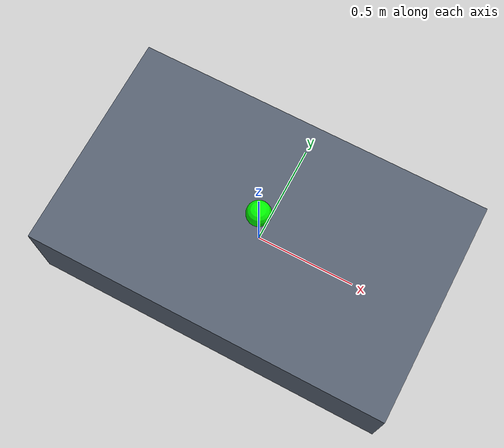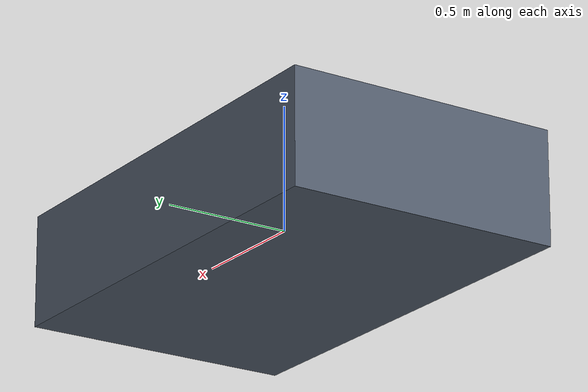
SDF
<?xml version="1.0"?>
<sdf version="1.10">
  <model name="crusader_omnix">

    <link name="base_link">
      <inertial>
        <mass>35.0</mass>
        <pose>0 0 -0.05 0 0 0</pose>
        <inertia>
          <ixx>3.12</ixx>
          <iyy>9.04</iyy>
          <izz>10.99</izz>
          <ixy>0</ixy><ixz>0</ixz><iyz>0</iyz>
        </inertia>
      </inertial>

      <collision name="hull_collision">
        <geometry><box><size>1.80 1.10 0.45</size></box></geometry>
      </collision>

      <visual name="hull_visual">
        <geometry><box><size>1.80 1.10 0.45</size></box></geometry>
        <material>
          <ambient>0.25 0.28 0.32 1</ambient>
          <diffuse>0.32 0.36 0.42 1</diffuse>
        </material>
      </visual>

      <visual name="mode_indicator">
        <pose>0 0 0.35 0 0 0</pose>
        <geometry><sphere><radius>0.06</radius></sphere></geometry>
        <material>
          <ambient>0 1 0 1</ambient>
          <diffuse>0 1 0 1</diffuse>
          <emissive>0 1 0 1</emissive>
        </material>
      </visual>

      <sensor name="imu_sensor" type="imu">
        <always_on>1</always_on>
        <update_rate>200</update_rate>
      </sensor>

      <sensor name="gps_sensor" type="navsat">
        <always_on>1</always_on>
        <update_rate>10</update_rate>
      </sensor>
    </link>

    <!-- ================== THRUSTERS ================== -->
    <!-- Positions/axes are the OmniX X-layout described above. -->

    <link name="thruster_fp">
      <pose>0.60 0.42 -0.10 0 0 0</pose>
      <inertial><mass>0.5</mass>
        <inertia><ixx>1e-4</ixx><iyy>1e-4</iyy><izz>1e-4</izz>
          <ixy>0</ixy><ixz>0</ixz><iyz>0</iyz></inertia></inertial>
      <visual name="prop"><geometry><cylinder><radius>0.06</radius>
        <length>0.04</length></cylinder></geometry></visual>
    </link>
    <joint name="thruster_fp_joint" type="revolute">
      <parent>base_link</parent><child>thruster_fp</child>
      <axis><xyz>0.707 0.707 0</xyz>
        <limit><lower>-1e16</lower><upper>1e16</upper></limit></axis>
    </joint>

    <link name="thruster_fs">
      <pose>0.60 -0.42 -0.10 0 0 0</pose>
      <inertial><mass>0.5</mass>
        <inertia><ixx>1e-4</ixx><iyy>1e-4</iyy><izz>1e-4</izz>
          <ixy>0</ixy><ixz>0</ixz><iyz>0</iyz></inertia></inertial>
      <visual name="prop"><geometry><cylinder><radius>0.06</radius>
        <length>0.04</length></cylinder></geometry></visual>
    </link>
    <joint name="thruster_fs_joint" type="revolute">
      <parent>base_link</parent><child>thruster_fs</child>
      <axis><xyz>0.707 -0.707 0</xyz>
        <limit><lower>-1e16</lower><upper>1e16</upper></limit></axis>
    </joint>

    <link name="thruster_ap">
      <pose>-0.70 0.42 -0.10 0 0 0</pose>
      <inertial><mass>0.5</mass>
        <inertia><ixx>1e-4</ixx><iyy>1e-4</iyy><izz>1e-4</izz>
          <ixy>0</ixy><ixz>0</ixz><iyz>0</iyz></inertia></inertial>
      <visual name="prop"><geometry><cylinder><radius>0.06</radius>
        <length>0.04</length></cylinder></geometry></visual>
    </link>
    <joint name="thruster_ap_joint" type="revolute">
      <parent>base_link</parent><child>thruster_ap</child>
      <axis><xyz>0.707 -0.707 0</xyz>
        <limit><lower>-1e16</lower><upper>1e16</upper></limit></axis>
    </joint>

    <link name="thruster_as">
      <pose>-0.70 -0.42 -0.10 0 0 0</pose>
      <inertial><mass>0.5</mass>
        <inertia><ixx>1e-4</ixx><iyy>1e-4</iyy><izz>1e-4</izz>
          <ixy>0</ixy><ixz>0</ixz><iyz>0</iyz></inertia></inertial>
      <visual name="prop"><geometry><cylinder><radius>0.06</radius>
        <length>0.04</length></cylinder></geometry></visual>
    </link>
    <joint name="thruster_as_joint" type="revolute">
      <parent>base_link</parent><child>thruster_as</child>
      <axis><xyz>0.707 0.707 0</xyz>
        <limit><lower>-1e16</lower><upper>1e16</upper></limit></axis>
    </joint>

    <!-- Thruster plugins: one per unit, matching the joints above. -->
    <plugin filename="gz-sim-thruster-system"
            name="gz::sim::systems::Thruster">
      <joint_name>thruster_fp_joint</joint_name>
      <thrust_coefficient>0.02</thrust_coefficient>
      <fluid_density>1000</fluid_density>
      <propeller_diameter>0.12</propeller_diameter>
      <velocity_control>true</velocity_control>
    </plugin>
    <plugin filename="gz-sim-thruster-system"
            name="gz::sim::systems::Thruster">
      <joint_name>thruster_fs_joint</joint_name>
      <thrust_coefficient>0.02</thrust_coefficient>
      <fluid_density>1000</fluid_density>
      <propeller_diameter>0.12</propeller_diameter>
      <velocity_control>true</velocity_control>
    </plugin>
    <plugin filename="gz-sim-thruster-system"
            name="gz::sim::systems::Thruster">
      <joint_name>thruster_ap_joint</joint_name>
      <thrust_coefficient>0.02</thrust_coefficient>
      <fluid_density>1000</fluid_density>
      <propeller_diameter>0.12</propeller_diameter>
      <velocity_control>true</velocity_control>
    </plugin>
    <plugin filename="gz-sim-thruster-system"
            name="gz::sim::systems::Thruster">
      <joint_name>thruster_as_joint</joint_name>
      <thrust_coefficient>0.02</thrust_coefficient>
      <fluid_density>1000</fluid_density>
      <propeller_diameter>0.12</propeller_diameter>
      <velocity_control>true</velocity_control>
    </plugin>

    <plugin filename="gz-sim-hydrodynamics-system"
            name="gz::sim::systems::Hydrodynamics">
      <link_name>base_link</link_name>
      <xDotU>-12.0</xDotU>
      <yDotV>-45.0</yDotV>
      <zDotW>-80.0</zDotW>
      <kDotP>-2.0</kDotP>
      <mDotQ>-8.0</mDotQ>
      <nDotR>-6.0</nDotR>
      <xU>-35.0</xU>
      <yV>-180.0</yV>
      <zW>-300.0</zW>
      <kP>-20.0</kP>
      <mQ>-60.0</mQ>
      <nR>-45.0</nR>
      <xUU>-50.0</xUU>
      <yVV>-450.0</yVV>
      <zWW>-600.0</zWW>
      <kPP>-30.0</kPP>
      <mQQ>-90.0</mQQ>
      <nRR>-70.0</nRR>
    </plugin>

    <!-- Freshwater: Marina Bay is a non-tidal reservoir behind the barrage. -->
    <plugin filename="gz-sim-buoyancy-engine-system"
            name="gz::sim::systems::BuoyancyEngine">
      <link_name>base_link</link_name>
      <fluid_density>1000</fluid_density>
      <default_volume>0.0350</default_volume>
    </plugin>

    <plugin name="ArduPilotPlugin" filename="ArduPilotPlugin">
      <fdm_addr>127.0.0.1</fdm_addr>
      <fdm_port_in>9002</fdm_port_in>
      <connectionTimeoutMaxCount>5</connectionTimeoutMaxCount>
      <lock_step>1</lock_step>
      <modelXYZToAirplaneXForwardZDown>0 0 0 3.141593 0 0</modelXYZToAirplaneXForwardZDown>
      <gazeboXYZToNED>0 0 0 3.141593 0 0</gazeboXYZToNED>
      <imuName>imu_sensor</imuName>

      <control channel="0">
        <jointName>thruster_fp_joint</jointName>
        <useForce>1</useForce><multiplier>90</multiplier><offset>-0.5</offset>
        <type>VELOCITY</type><p_gain>0.20</p_gain><i_gain>0</i_gain><d_gain>0</d_gain>
        <cmd_max>1000</cmd_max><cmd_min>-1000</cmd_min>
      </control>
      <control channel="1">
        <jointName>thruster_fs_joint</jointName>
        <useForce>1</useForce><multiplier>90</multiplier><offset>-0.5</offset>
        <type>VELOCITY</type><p_gain>0.20</p_gain><i_gain>0</i_gain><d_gain>0</d_gain>
        <cmd_max>1000</cmd_max><cmd_min>-1000</cmd_min>
      </control>
      <control channel="2">
        <jointName>thruster_ap_joint</jointName>
        <useForce>1</useForce><multiplier>90</multiplier><offset>-0.5</offset>
        <type>VELOCITY</type><p_gain>0.20</p_gain><i_gain>0</i_gain><d_gain>0</d_gain>
        <cmd_max>1000</cmd_max><cmd_min>-1000</cmd_min>
      </control>
      <control channel="3">
        <jointName>thruster_as_joint</jointName>
        <useForce>1</useForce><multiplier>90</multiplier><offset>-0.5</offset>
        <type>VELOCITY</type><p_gain>0.20</p_gain><i_gain>0</i_gain><d_gain>0</d_gain>
        <cmd_max>1000</cmd_max><cmd_min>-1000</cmd_min>
      </control>
    </plugin>

  </model>
</sdf>
